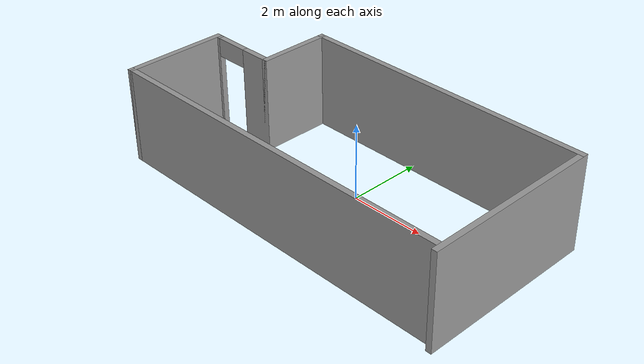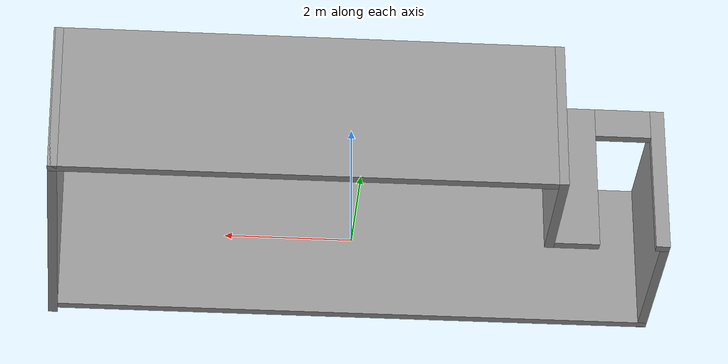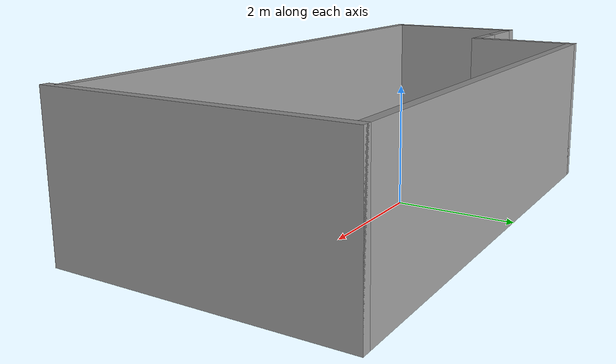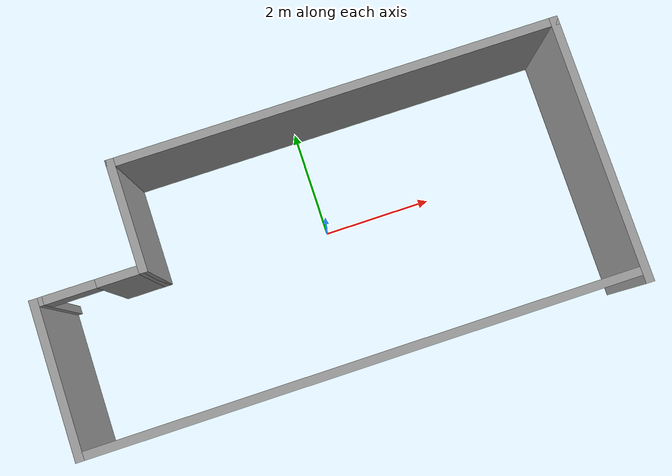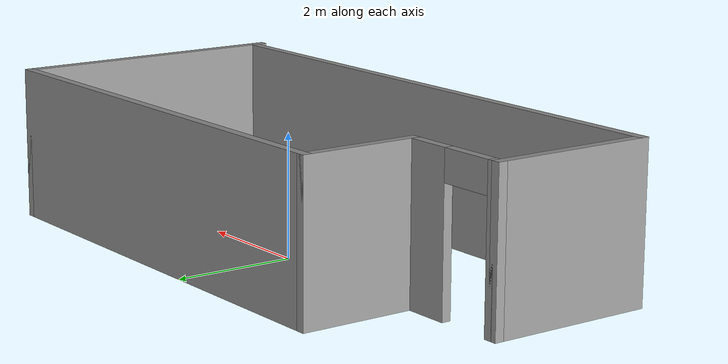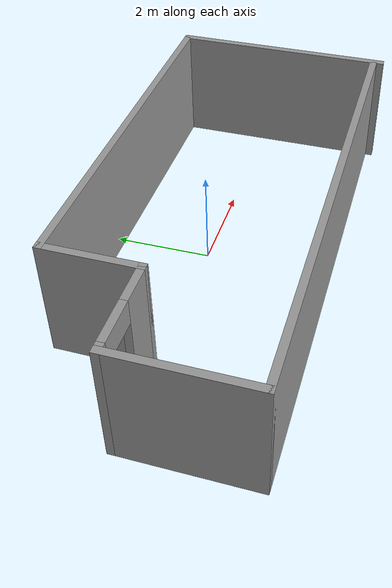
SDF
<?xml version='1.0'?>
<sdf version='1.6'>
  <model name='building1'>
    <pose frame=''>-0.137722 -0.38073 0 0 -0 0</pose>
    <link name='Wall_10'>
      <collision name='Wall_10_Collision'>
        <geometry>
          <box>
            <size>4.75 0.15 2.5</size>
          </box>
        </geometry>
        <pose frame=''>0 0 1.25 0 -0 0</pose>
      </collision>
      <visual name='Wall_10_Visual'>
        <pose frame=''>0 0 1.25 0 -0 0</pose>
        <geometry>
          <box>
            <size>4.75 0.15 2.5</size>
          </box>
        </geometry>
        <material>
          <script>
            <uri>file://media/materials/scripts/gazebo.material</uri>
            <name>Gazebo/Grey</name>
          </script>
          <ambient>1 1 1 1</ambient>
        </material>
      </visual>
      <pose frame=''>4.85 0 0 0 0 -1.5708</pose>
    </link>
    <link name='Wall_12'>
      <collision name='Wall_12_Collision'>
        <geometry>
          <box>
            <size>2.75 0.15 2.5</size>
          </box>
        </geometry>
        <pose frame=''>0 0 1.25 0 -0 0</pose>
      </collision>
      <visual name='Wall_12_Visual'>
        <pose frame=''>0 0 1.25 0 -0 0</pose>
        <geometry>
          <box>
            <size>2.75 0.15 2.5</size>
          </box>
        </geometry>
        <material>
          <script>
            <uri>file://media/materials/scripts/gazebo.material</uri>
            <name>Gazebo/Grey</name>
          </script>
          <ambient>1 1 1 1</ambient>
        </material>
      </visual>
      <pose frame=''>-4.85 -0.85 0 0 0 -1.5708</pose>
    </link>
    <link name='Wall_13'>
      <collision name='Wall_13_Collision'>
        <geometry>
          <box>
            <size>9.75 0.15 2.5</size>
          </box>
        </geometry>
        <pose frame=''>0 0 1.25 0 -0 0</pose>
      </collision>
      <visual name='Wall_13_Visual'>
        <pose frame=''>0 0 1.25 0 -0 0</pose>
        <geometry>
          <box>
            <size>9.75 0.15 2.5</size>
          </box>
        </geometry>
        <material>
          <script>
            <uri>file://media/materials/scripts/gazebo.material</uri>
            <name>Gazebo/Grey</name>
          </script>
          <ambient>1 1 1 1</ambient>
        </material>
      </visual>
      <pose frame=''>-0.05 -2.15 0 0 -0 0</pose>
    </link>
    <link name='Wall_6'>
      <pose frame=''>-3.925 0.45 0 0 -0 0</pose>
      <visual name='Wall_6_Visual_0'>
        <pose frame=''>-0.886249 0 1.25 0 -0 0</pose>
        <geometry>
          <box>
            <size>0.227502 0.15 2.5</size>
          </box>
        </geometry>
        <material>
          <script>
            <uri>file://media/materials/scripts/gazebo.material</uri>
            <name>Gazebo/Grey</name>
          </script>
          <ambient>1 1 1 1</ambient>
        </material>
      </visual>
      <collision name='Wall_6_Collision_0'>
        <geometry>
          <box>
            <size>0.227502 0.15 2.5</size>
          </box>
        </geometry>
        <pose frame=''>-0.886249 0 1.25 0 -0 0</pose>
      </collision>
      <visual name='Wall_6_Visual_1'>
        <pose frame=''>0.563751 0 1.25 0 -0 0</pose>
        <geometry>
          <box>
            <size>0.872498 0.15 2.5</size>
          </box>
        </geometry>
        <material>
          <script>
            <uri>file://media/materials/scripts/gazebo.material</uri>
            <name>Gazebo/Grey</name>
          </script>
          <ambient>1 1 1 1</ambient>
        </material>
      </visual>
      <collision name='Wall_6_Collision_1'>
        <geometry>
          <box>
            <size>0.872498 0.15 2.5</size>
          </box>
        </geometry>
        <pose frame=''>0.563751 0 1.25 0 -0 0</pose>
      </collision>
      <visual name='Wall_6_Visual_2'>
        <pose frame=''>-0.322498 0 2.25 0 -0 0</pose>
        <geometry>
          <box>
            <size>0.9 0.15 0.5</size>
          </box>
        </geometry>
        <material>
          <script>
            <uri>file://media/materials/scripts/gazebo.material</uri>
            <name>Gazebo/Grey</name>
          </script>
          <ambient>1 1 1 1</ambient>
        </material>
      </visual>
      <collision name='Wall_6_Collision_2'>
        <geometry>
          <box>
            <size>0.9 0.15 0.5</size>
          </box>
        </geometry>
        <pose frame=''>-0.322498 0 2.25 0 -0 0</pose>
      </collision>
    </link>
    <link name='Wall_7'>
      <collision name='Wall_7_Collision'>
        <geometry>
          <box>
            <size>2 0.15 2.5</size>
          </box>
        </geometry>
        <pose frame=''>0 0 1.25 0 -0 0</pose>
      </collision>
      <visual name='Wall_7_Visual'>
        <pose frame=''>0 0 1.25 0 -0 0</pose>
        <geometry>
          <box>
            <size>2 0.15 2.5</size>
          </box>
        </geometry>
        <material>
          <script>
            <uri>file://media/materials/scripts/gazebo.material</uri>
            <name>Gazebo/Grey</name>
          </script>
          <ambient>1 1 1 1</ambient>
        </material>
      </visual>
      <pose frame=''>-3 1.375 0 0 -0 1.5708</pose>
    </link>
    <link name='Wall_9'>
      <collision name='Wall_9_Collision'>
        <geometry>
          <box>
            <size>8 0.15 2.5</size>
          </box>
        </geometry>
        <pose frame=''>0 0 1.25 0 -0 0</pose>
      </collision>
      <visual name='Wall_9_Visual'>
        <pose frame=''>0 0 1.25 0 -0 0</pose>
        <geometry>
          <box>
            <size>8 0.15 2.5</size>
          </box>
        </geometry>
        <material>
          <script>
            <uri>file://media/materials/scripts/gazebo.material</uri>
            <name>Gazebo/Grey</name>
          </script>
          <ambient>1 1 1 1</ambient>
        </material>
      </visual>
      <pose frame=''>0.925 2.3 0 0 -0 0</pose>
    </link>
    <static>1</static>
  </model>
</sdf>
